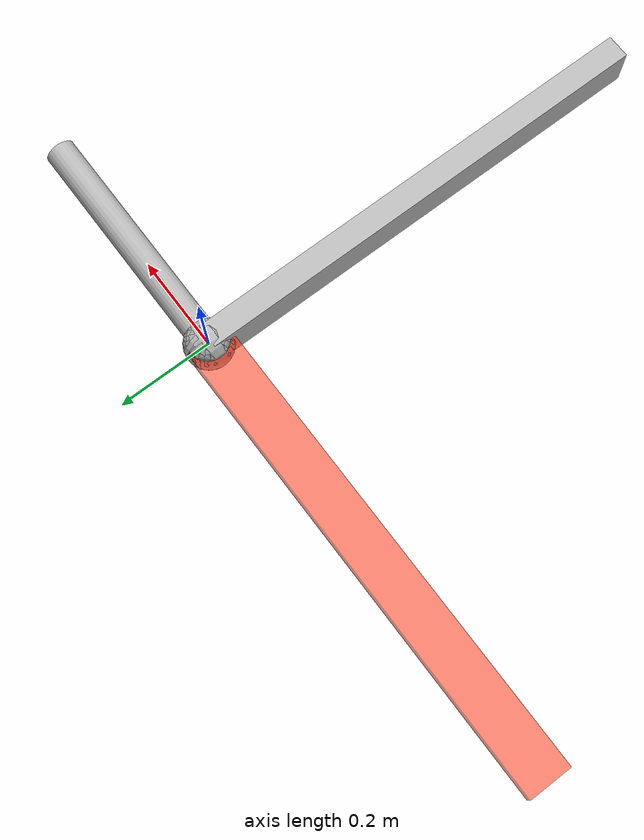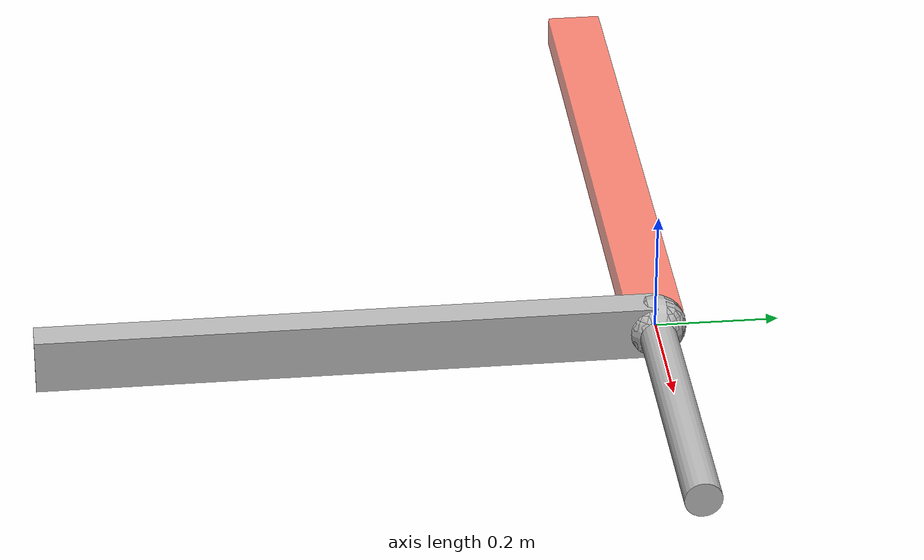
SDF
<?xml version="1.0"?>
<sdf version="1.9">
	<world name="planar_world">
		<model name="PPR">
			<static>
				false
			</static>
			<link name="l1">
				<pose>
					0 -0.5 0 -1.5707 0 0
				</pose>
				<inertial>
					<inertia>
						<ixx>
							1
						</ixx>
						<ixy>
							0
						</ixy>
						<ixz>
							0
						</ixz>
						<iyy>
							1
						</iyy>
						<iyz>
							0
						</iyz>
						<izz>
							1
						</izz>
					</inertia>
					<mass>
						1.0
					</mass>
				</inertial>
				<collision name="l1_collision">
					<geometry>
						<box>
							<size>
								0.05 0.09 1
							</size>
						</box>
					</geometry>
				</collision>
				<visual name="l1_visual">
					<geometry>
						<box>
							<size>
								0.05 0.09 1
							</size>
						</box>
					</geometry>
				</visual>
				<visual name="joint_case1">
					<pose>
						0 0 0.5 0 0 0
					</pose>
					<geometry>
						<sphere>
							<radius>
								0.05
							</radius>
						</sphere>
					</geometry>
				</visual>
			</link>
			<link name="l2">
				<pose relative_to="l1">
					-0.50 0 0.5  1.5707 0 1.5707
				</pose>
				<inertial>
					<inertia>
						<ixx>
							1
						</ixx>
						<ixy>
							0
						</ixy>
						<ixz>
							0
						</ixz>
						<iyy>
							1
						</iyy>
						<iyz>
							0
						</iyz>
						<izz>
							1
						</izz>
					</inertia>
					<mass>
						1.0
					</mass>
				</inertial>
				<collision name="l2_collision">
					<geometry>
						<box>
							<size>
								0.05 0.09 1
							</size>
						</box>
					</geometry>
				</collision>
				<visual name="l2_visual">
					<geometry>
						<box>
							<size>
								0.05 0.09 1
							</size>
						</box>
					</geometry>
					<material>
						<diffuse>
							0.98 0.22 0.1 0.6
						</diffuse>
					</material>
				</visual>
				<visual name="joint_case2">
					<pose>
						0 0 0.5 0 0 0
					</pose>
					<geometry>
						<sphere>
							<radius>
								0.05
							</radius>
						</sphere>
					</geometry>
				</visual>
			</link>
			<link name="l3">
				<pose relative_to="l2">
					0 0 0.75 0 0 0
				</pose>
				<inertial>
					<inertia>
						<ixx>
							1
						</ixx>
						<ixy>
							0
						</ixy>
						<ixz>
							0
						</ixz>
						<iyy>
							1
						</iyy>
						<iyz>
							0
						</iyz>
						<izz>
							1
						</izz>
					</inertia>
					<mass>
						1.0
					</mass>
				</inertial>
				<collision name="l3_collision">
					<geometry>
						<cylinder>
							<radius>
								0.07
							</radius>
							<length>
								0.5
							</length>
						</cylinder>
					</geometry>
				</collision>
				<visual name="l3_visual">
					<geometry>
						<cylinder>
							<radius>
								0.03
							</radius>
							<length>
								0.5
							</length>
						</cylinder>
					</geometry>
				</visual>
			</link>
			<joint name="q1" type="prismatic">
				<pose>
					0 0 0 0 0 0
				</pose>
				<parent>
					world
				</parent>
				<child>
					l1
				</child>
				<axis>
					<xyz>
						0 0 1
					</xyz>
					<limit>
						<lower>
							0
						</lower>
						<upper>
							0.5
						</upper>
					</limit>
					<dynamics>
						<damping>
							0.2
						</damping>
						<friction>
							0.1
						</friction>
					</dynamics>
				</axis>
			</joint>
			<joint name="q2" type="prismatic">
				<pose relative_to="l2">
					0 0 0 0 0 0
				</pose>
				<parent>
					l1
				</parent>
				<child>
					l2
				</child>
				<axis>
					<xyz>
						0 0 1
					</xyz>
					<limit>
						<lower>
							0
						</lower>
						<upper>
							0.5
						</upper>
					</limit>
					<dynamics>
						<damping>
							0.2
						</damping>
						<friction>
							0.1
						</friction>
					</dynamics>
				</axis>
			</joint>
			<joint name="q3" type="revolute">
				<pose relative_to="l3">
					0 0 -0.25 0  0 0
				</pose>
				<parent>
					l2
				</parent>
				<child>
					l3
				</child>
				<axis>
					<xyz>
						-1 0 0
					</xyz>
					<dynamics>
						<damping>
							0.2
						</damping>
						<friction>
							0.1
						</friction>
					</dynamics>
				</axis>
			</joint>
		</model>
	</world>
</sdf>
